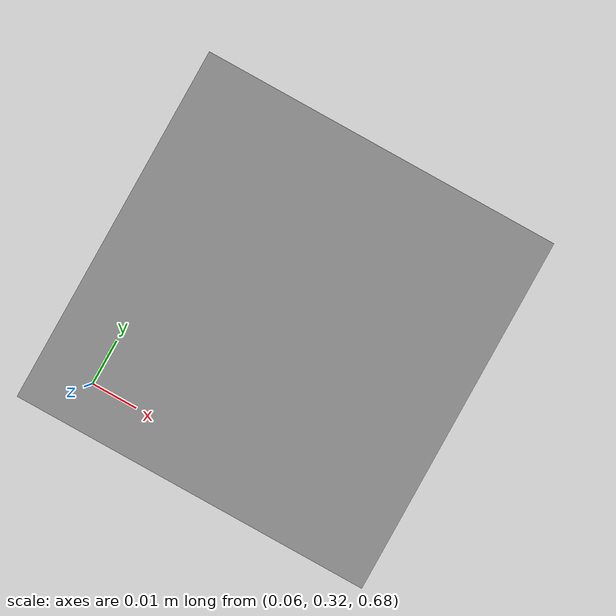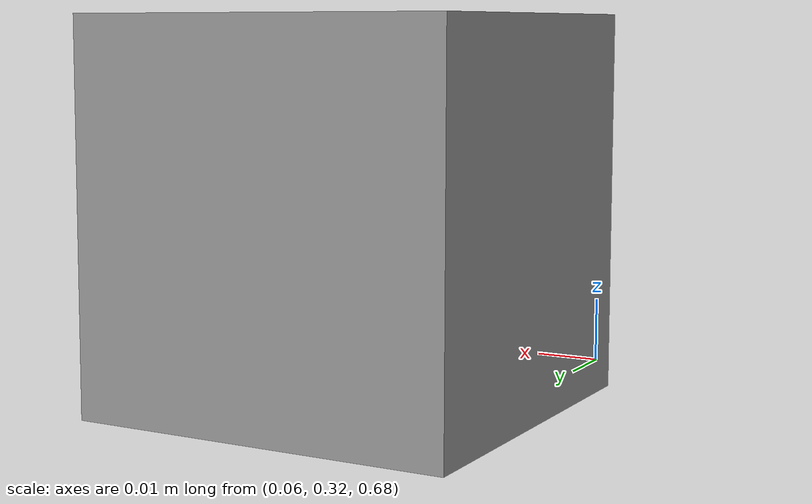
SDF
<?xml version='1.0'?>
<sdf version='1.7'>
  <model name='smooth_cube'>
    <link name='link_0'>
      <inertial>
        <mass>0.0001</mass>
        <inertia>
          <ixx>0.01</ixx>
          <ixy>0</ixy>
          <ixz>0</ixz>
          <iyy>0.01</iyy>
          <iyz>0</iyz>
          <izz>0.01</izz>
        </inertia>
        <pose>0 0 0 0 -0 0</pose>
      </inertial>
      <pose>0.057717 0.380259 0.676035 1.57046 -0 0</pose>
      <gravity>1</gravity>
      <self_collide>0</self_collide>
      <kinematic>0</kinematic>
      <enable_wind>0</enable_wind>
      <visual name='visual'>
        <pose>0 0 0 0 -0 0</pose>
        <geometry>
          <mesh>
            <uri>/home/yanzhang/HRI_competition_2024/tiagocomp_ws/src/tiago_teleoperate_arm/arm_teleop_keyboard/meshes/smooth.stl</uri>
            <scale>0.0012 0.0012 0.0012</scale>
          </mesh>
        </geometry>
        <material>
          <lighting>1</lighting>
          <script>
            <uri>file://media/materials/scripts/gazebo.material</uri>
            <uri>/home/yanzhang/HRI_competition_2024/tiagocomp_ws/src/tiago_teleoperate_arm/arm_teleop_keyboard/urdf/smooth_cube/smooth_cube/materials/textures</uri>
            <name>Gazebo/Grey</name>
            <name>0</name>
          </script>
          <shader type='pixel'>
            <normal_map>__default__</normal_map>
          </shader>
          <ambient>0.3 0.3 0.3 1</ambient>
          <diffuse>0.7 0.7 0.7 1</diffuse>
          <specular>0.01 0.01 0.01 1</specular>
          <emissive>0 0 0 1</emissive>
        </material>
        <transparency>0</transparency>
        <cast_shadows>1</cast_shadows>
      </visual>
      <collision name='collision'>
        <laser_retro>0</laser_retro>
        <max_contacts>10</max_contacts>
        <pose>0 0 0 0 -0 0</pose>
        <geometry>
          <mesh>
            <uri>/home/yanzhang/HRI_competition_2024/tiagocomp_ws/src/tiago_teleoperate_arm/arm_teleop_keyboard/meshes/smooth.stl</uri>
            <scale>0.0012 0.0012 0.0012</scale>
          </mesh>
        </geometry>
        <surface>
          <friction>
            <ode>
              <mu>2</mu>
              <mu2>2</mu2>
              <fdir1>0 0 0</fdir1>
              <slip1>0</slip1>
              <slip2>0</slip2>
            </ode>
            <torsional>
              <coefficient>1</coefficient>
              <patch_radius>0</patch_radius>
              <surface_radius>0</surface_radius>
              <use_patch_radius>1</use_patch_radius>
              <ode>
                <slip>0</slip>
              </ode>
            </torsional>
          </friction>
          <bounce>
            <restitution_coefficient>0</restitution_coefficient>
            <threshold>1e+06</threshold>
          </bounce>
          <contact>
            <collide_without_contact>0</collide_without_contact>
            <collide_without_contact_bitmask>1</collide_without_contact_bitmask>
            <collide_bitmask>1</collide_bitmask>
            <ode>
              <soft_cfm>0</soft_cfm>
              <soft_erp>0.2</soft_erp>
              <kp>1e+13</kp>
              <kd>1</kd>
              <max_vel>0.01</max_vel>
              <min_depth>0</min_depth>
            </ode>
            <bullet>
              <split_impulse>1</split_impulse>
              <split_impulse_penetration_threshold>-0.01</split_impulse_penetration_threshold>
              <soft_cfm>0</soft_cfm>
              <soft_erp>0.2</soft_erp>
              <kp>1e+13</kp>
              <kd>1</kd>
            </bullet>
          </contact>
        </surface>
      </collision>
    </link>
    <static>0</static>
    <allow_auto_disable>1</allow_auto_disable>
  </model>
</sdf>
